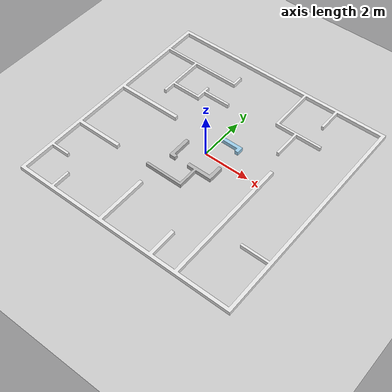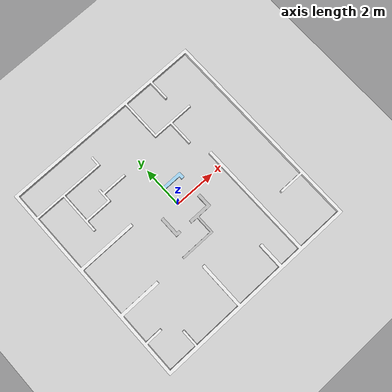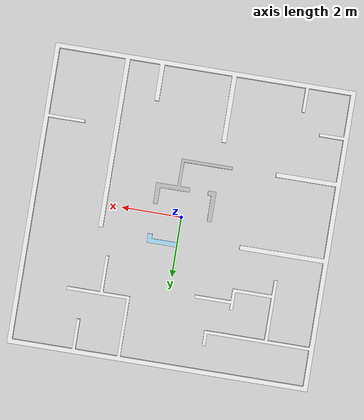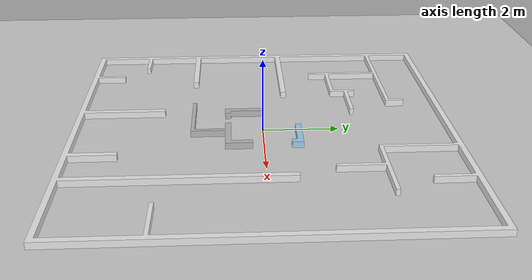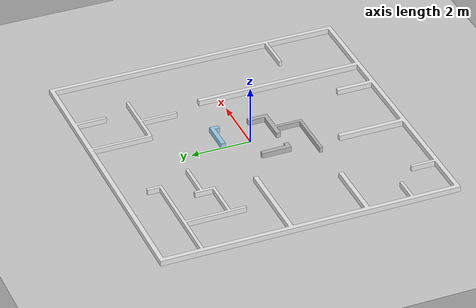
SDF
<?xml version="1.0"?>
<sdf version="1.6">
  <world name="omni_world">

    <physics name="1ms" type="ignored">
      <max_step_size>0.001</max_step_size>
      <real_time_factor>1.0</real_time_factor>
    </physics>

    <plugin filename="ignition-gazebo-physics-system"
            name="ignition::gazebo::systems::Physics"/>
    <plugin filename="ignition-gazebo-user-commands-system"
            name="ignition::gazebo::systems::UserCommands"/>
    <plugin filename="ignition-gazebo-scene-broadcaster-system"
            name="ignition::gazebo::systems::SceneBroadcaster"/>
    <plugin filename="ignition-gazebo-imu-system"
            name="ignition::gazebo::systems::Imu"/>
    <plugin filename="ignition-gazebo-sensors-system"
            name="ignition::gazebo::systems::Sensors">
      <render_engine>ogre2</render_engine>
    </plugin>

    <light type="directional" name="sun">
      <cast_shadows>true</cast_shadows>
      <pose>0 0 10 0 0 0</pose>
      <diffuse>0.8 0.8 0.8 1</diffuse>
      <specular>0.2 0.2 0.2 1</specular>
      <attenuation>
        <range>1000</range>
        <constant>0.9</constant>
        <linear>0.01</linear>
        <quadratic>0.001</quadratic>
      </attenuation>
      <direction>-0.5 0.1 -0.9</direction>
    </light>

    <model name="ground_plane">
      <static>true</static>
      <link name="link">
        <collision name="collision">
          <geometry>
            <plane>
              <normal>0 0 1</normal>
              <size>100 100</size>
            </plane>
          </geometry>
        </collision>
        <visual name="visual">
          <geometry>
            <plane>
              <normal>0 0 1</normal>
              <size>100 100</size>
            </plane>
          </geometry>
          <material>
            <ambient>0.8 0.8 0.8 1</ambient>
            <diffuse>0.8 0.8 0.8 1</diffuse>
            <specular>0.8 0.8 0.8 1</specular>
          </material>
        </visual>
      </link>
    </model>

    <include>
      <name>omni_walls</name>
      <pose>0 0 0 0 0 0</pose>
      <uri>/home/senai/omnibot_ws/src/omniBot/omnibot_ignition/models/omni_walls</uri>
    </include>

  </world>
</sdf>

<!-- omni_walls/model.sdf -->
<sdf version="1.5">
  <model name="omni_walls">
    <static>true</static>
    <link name="link">
      <collision name="collision">
        <pose>0 0 0 0 0 0</pose>
        <geometry>
          <mesh>
            <uri>meshes/omni_walls.dae</uri>
          </mesh>
        </geometry>
      </collision>
      <visual name="visual">
        <pose>0 0 0 0 0 0</pose>
        <geometry>
          <mesh>
            <uri>meshes/omni_walls.dae</uri>
          </mesh>
        </geometry>
      </visual>
    </link>
  </model>
</sdf>
